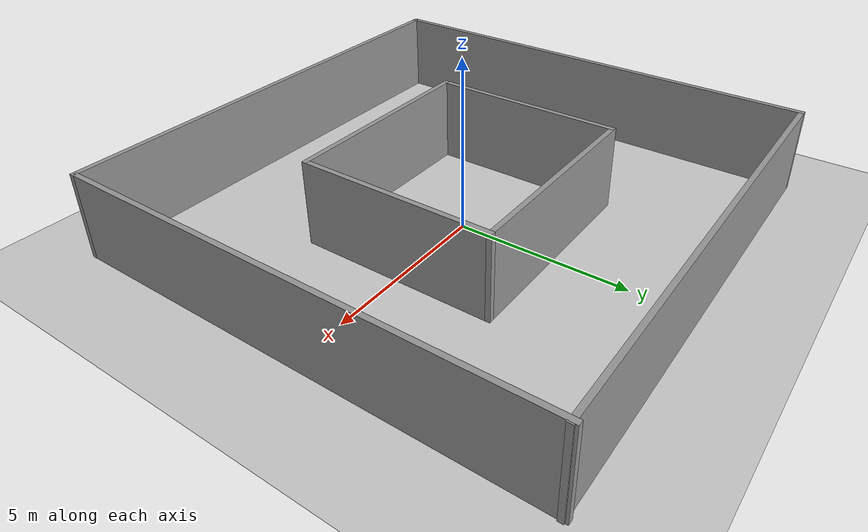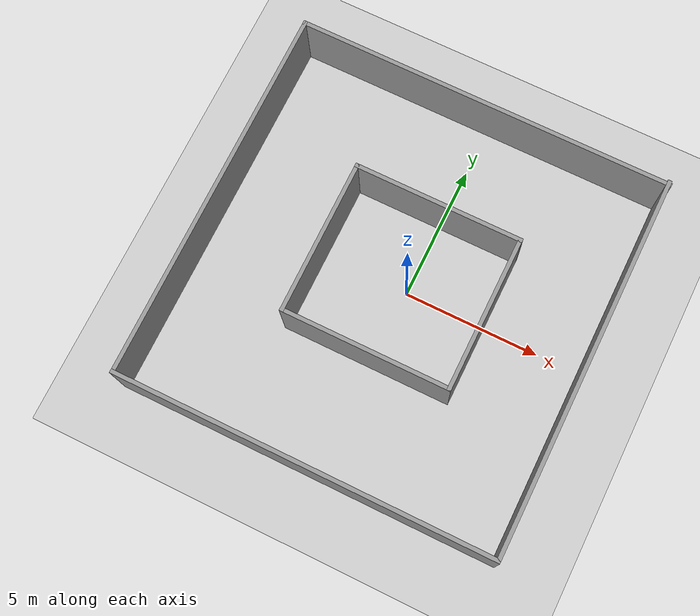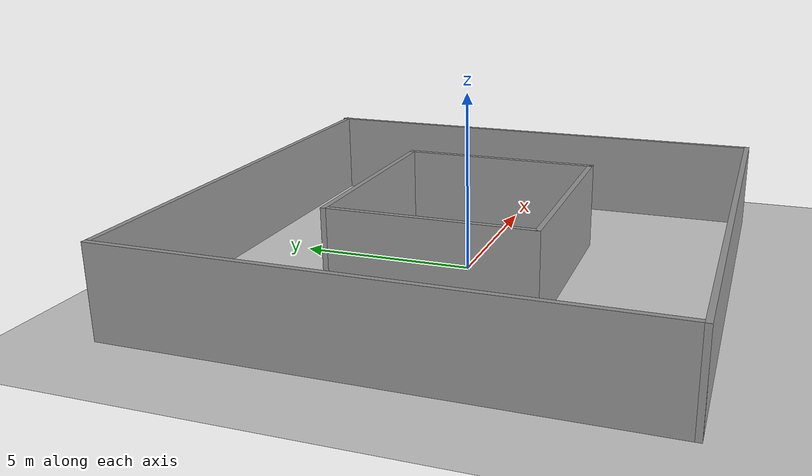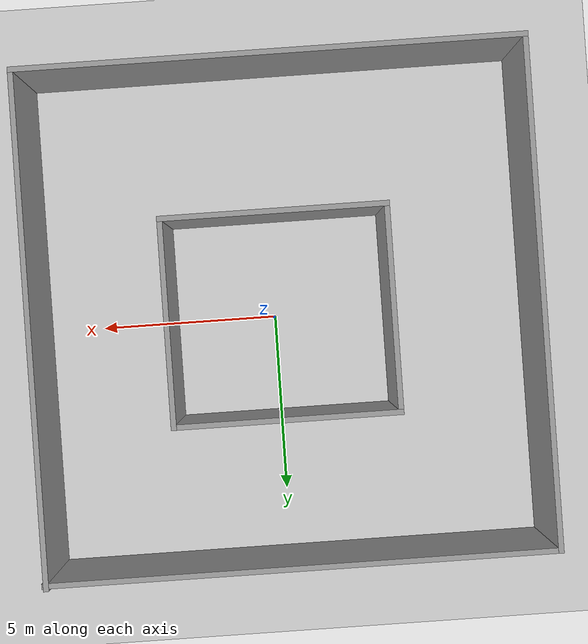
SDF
<sdf version="1.6">
 <world name="default">
  <light name="sun" type="directional">
   <pose>0 0 10 0 -0 0</pose>
   <diffuse>0.8 0.8 0.8 1</diffuse>
   <specular>0.1 0.1 0.1 1</specular>
   <attenuation>
    <range>1000</range>
    <constant>0.9</constant>
    <linear>0.01</linear>
    <quadratic>0.001</quadratic>
   </attenuation>
   <direction>-0.5 0.5 -1</direction>
  </light>
  <model name="ground_plane">
   <static>1</static>
   <link name="link">
    <collision name="collision">
     <geometry><plane><normal>0 0 1</normal><size>100 100</size></plane></geometry>
     <surface><friction><ode><mu>100</mu><mu2>50</mu2></ode></friction></surface>
    </collision>
    <visual name="visual">
     <cast_shadows>0</cast_shadows>
     <geometry><plane><normal>0 0 1</normal><size>100 100</size></plane></geometry>
     <material>
      <script><uri>file://media/materials/scripts/gazebo.material</uri><name>Gazebo/Grey</name></script>
     </material>
    </visual>
   </link>
  </model>
  <gravity>0 0 -9.8</gravity>
  <magnetic_field>6e-06 2.3e-05 -4.2e-05</magnetic_field>
  <atmosphere type="adiabatic"/>
  <physics name="default_physics" default="0" type="ode">
   <max_step_size>0.001</max_step_size>
   <real_time_factor>1</real_time_factor>
   <real_time_update_rate>1000</real_time_update_rate>
  </physics>
  <scene><ambient>0.4 0.4 0.4 1</ambient><background>0.7 0.7 0.7 1</background><shadows>1</shadows></scene>
  <spherical_coordinates>
   <surface_model>EARTH_WGS84</surface_model>
   <latitude_deg>0</latitude_deg>
   <longitude_deg>0</longitude_deg>
   <elevation>0</elevation>
   <heading_deg>0</heading_deg>
  </spherical_coordinates>
  <model name="1">
   <pose>-0.294013 -0.139012 0 0 -0 0</pose>
   <link name="Wall_0">
    <collision name="Wall_0_Collision">
     <geometry><box><size>6.25 0.15 2.5</size></box></geometry>
     <pose>0 0 1.25 0 -0 0</pose>
    </collision>
    <visual name="Wall_0_Visual">
     <pose>0 0 1.25 0 -0 0</pose>
     <geometry><box><size>6.25 0.15 2.5</size></box></geometry>
     <material>
      <script><uri>file://media/materials/scripts/gazebo.material</uri><name>Gazebo/Grey</name></script>
      <ambient>1 1 1 1</ambient>
     </material>
     <meta><layer>0</layer></meta>
    </visual>
    <pose>0.134013 -2.70099 0 0 -0 0</pose>
   </link>
   <link name="Wall_10">
    <collision name="Wall_10_Collision">
     <geometry><box><size>13.9652 0.15 2.5</size></box></geometry>
     <pose>0 0 1.25 0 -0 0</pose>
    </collision>
    <visual name="Wall_10_Visual">
     <pose>0 0 1.25 0 -0 0</pose>
     <geometry><box><size>13.9652 0.15 2.5</size></box></geometry>
     <material>
      <script><uri>file://media/materials/scripts/gazebo.material</uri><name>Gazebo/Grey</name></script>
      <ambient>1 1 1 1</ambient>
     </material>
     <meta><layer>0</layer></meta>
    </visual>
    <pose>-0.017489 -6.96018 0 0 -0 0</pose>
   </link>
   <link name="Wall_12">
    <collision name="Wall_12_Collision">
     <geometry><box><size>14 0.15 2.5</size></box></geometry>
     <pose>0 0 1.25 0 -0 0</pose>
    </collision>
    <visual name="Wall_12_Visual">
     <pose>0 0 1.25 0 -0 0</pose>
     <geometry><box><size>14 0.15 2.5</size></box></geometry>
     <material>
      <script><uri>file://media/materials/scripts/gazebo.material</uri><name>Gazebo/Grey</name></script>
      <ambient>1 1 1 1</ambient>
     </material>
     <meta><layer>0</layer></meta>
    </visual>
    <pose>6.88992 0.035179 0 0 -0 1.5708</pose>
   </link>
   <link name="Wall_17">
    <collision name="Wall_17_Collision">
     <geometry><box><size>14 0.15 2.5</size></box></geometry>
     <pose>0 0 1.25 0 -0 0</pose>
    </collision>
    <visual name="Wall_17_Visual">
     <pose>0 0 1.25 0 -0 0</pose>
     <geometry><box><size>14 0.15 2.5</size></box></geometry>
     <material>
      <script><uri>file://media/materials/scripts/gazebo.material</uri><name>Gazebo/Grey</name></script>
      <ambient>1 1 1 1</ambient>
     </material>
     <meta><layer>0</layer></meta>
    </visual>
    <pose>-6.9249 -0.035179 0 0 -0 1.5708</pose>
   </link>
   <link name="Wall_18">
    <collision name="Wall_18_Collision">
     <geometry><box><size>14 0.15 2.5</size></box></geometry>
     <pose>0 0 1.25 0 -0 0</pose>
    </collision>
    <visual name="Wall_18_Visual">
     <pose>0 0 1.25 0 -0 0</pose>
     <geometry><box><size>14 0.15 2.5</size></box></geometry>
     <material>
      <script><uri>file://media/materials/scripts/gazebo.material</uri><name>Gazebo/Grey</name></script>
      <ambient>1 1 1 1</ambient>
     </material>
     <meta><layer>0</layer></meta>
    </visual>
    <pose>0.000101 6.88982 0 0 -0 0</pose>
   </link>
   <link name="Wall_5">
    <collision name="Wall_5_Collision">
     <geometry><box><size>5.75 0.15 2.5</size></box></geometry>
     <pose>0 0 1.25 0 -0 0</pose>
    </collision>
    <visual name="Wall_5_Visual">
     <pose>0 0 1.25 0 -0 0</pose>
     <geometry><box><size>5.75 0.15 2.5</size></box></geometry>
     <material>
      <script><uri>file://media/materials/scripts/gazebo.material</uri><name>Gazebo/Grey</name></script>
      <ambient>1 1 1 1</ambient>
     </material>
     <meta><layer>0</layer></meta>
    </visual>
    <pose>3.18401 0.099012 0 0 -0 1.5708</pose>
   </link>
   <link name="Wall_6">
    <collision name="Wall_6_Collision">
     <geometry><box><size>6.25 0.15 2.5</size></box></geometry>
     <pose>0 0 1.25 0 -0 0</pose>
    </collision>
    <visual name="Wall_6_Visual">
     <pose>0 0 1.25 0 -0 0</pose>
     <geometry><box><size>6.25 0.15 2.5</size></box></geometry>
     <material>
      <script><uri>file://media/materials/scripts/gazebo.material</uri><name>Gazebo/Grey</name></script>
      <ambient>1 1 1 1</ambient>
     </material>
     <meta><layer>0</layer></meta>
    </visual>
    <pose>0.134013 2.89901 0 0 -0 3.14159</pose>
   </link>
   <link name="Wall_7">
    <collision name="Wall_7_Collision">
     <geometry><box><size>5.75 0.15 2.5</size></box></geometry>
     <pose>0 0 1.25 0 -0 0</pose>
    </collision>
    <visual name="Wall_7_Visual">
     <pose>0 0 1.25 0 -0 0</pose>
     <geometry><box><size>5.75 0.15 2.5</size></box></geometry>
     <material>
      <script><uri>file://media/materials/scripts/gazebo.material</uri><name>Gazebo/Grey</name></script>
      <ambient>1 1 1 1</ambient>
     </material>
     <meta><layer>0</layer></meta>
    </visual>
    <pose>-2.91599 0.099012 0 0 0 -1.5708</pose>
   </link>
   <static>1</static>
  </model>
 </world>
</sdf>
